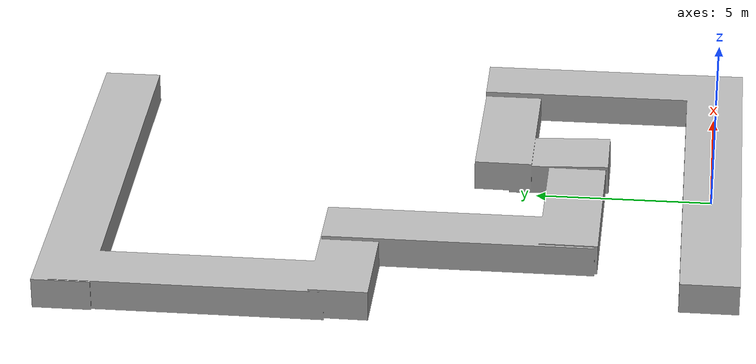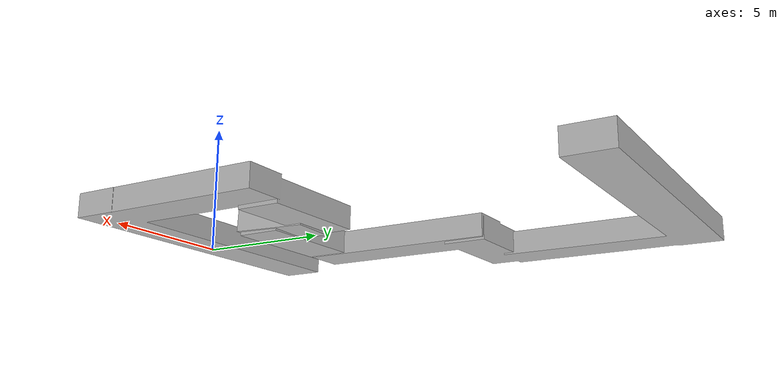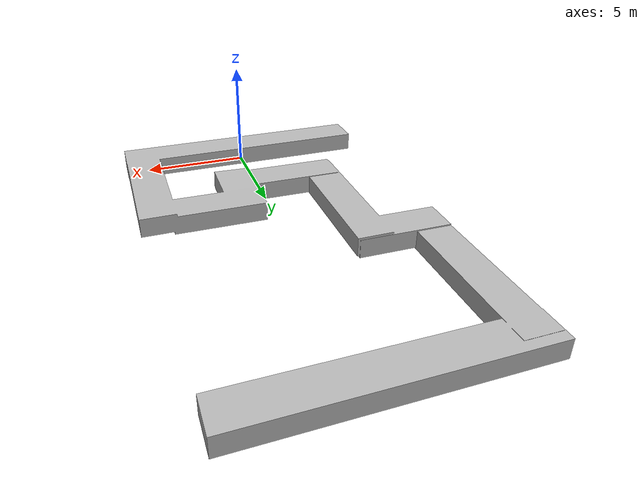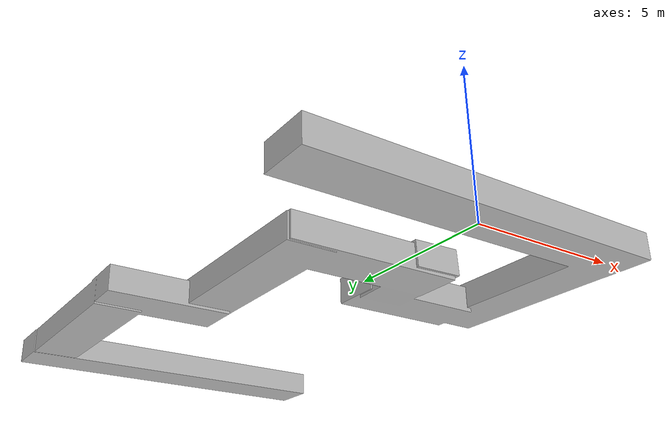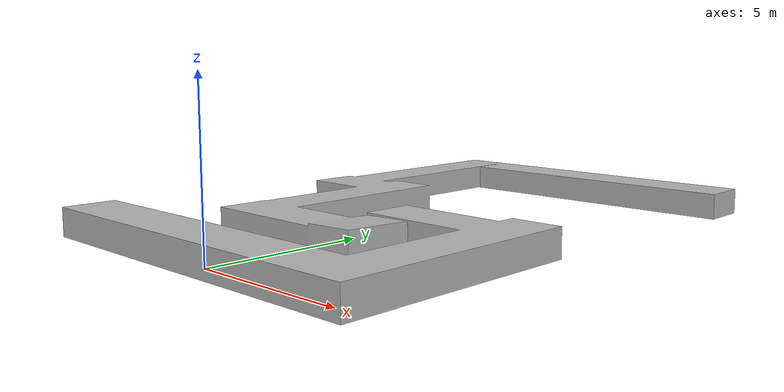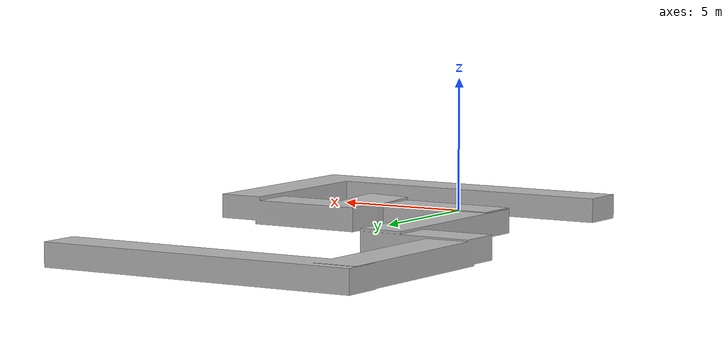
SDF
<?xml version="1.0" ?>
<sdf version="1.6">
  <model name="my_model">
    <pose>0 0 0.5 0 0 0</pose>
    <static>true</static>
    <link name="link">
      <collision name="collision">
        <geometry>
          <mesh>
            <uri>model://yol/meshes/my_model.stl</uri>
            <scale>1.5 1.5 1.5</scale>
          </mesh>
        </geometry>
      </collision>
      <visual name="visual">
        <geometry>
          <mesh>
            <uri>model://yol/meshes/my_model.stl</uri>
            <scale>1.5 1.5 1.5</scale>
          </mesh>
        </geometry>
      </visual>
    </link>
  </model>
</sdf>
